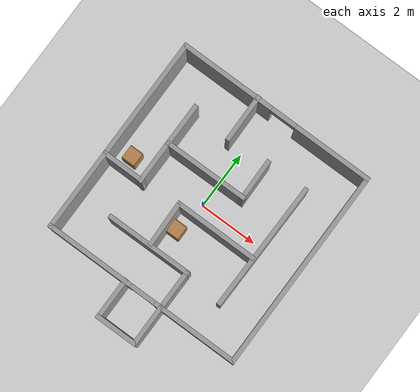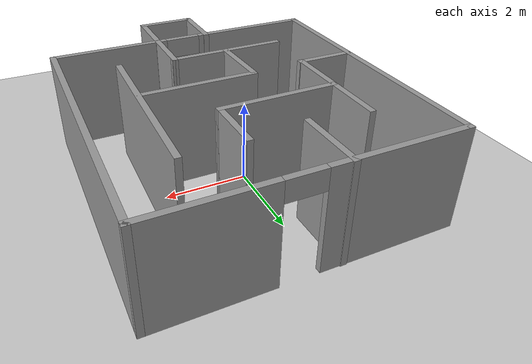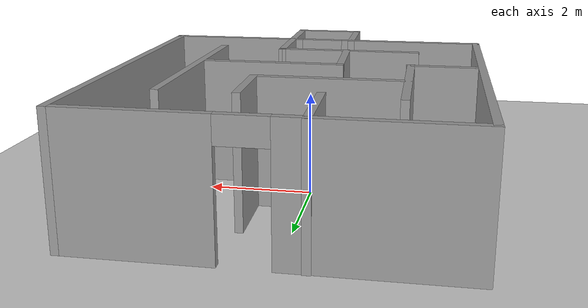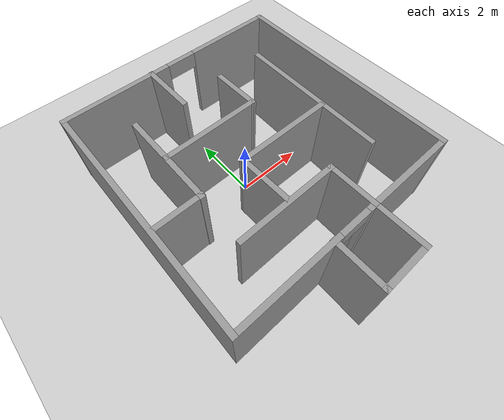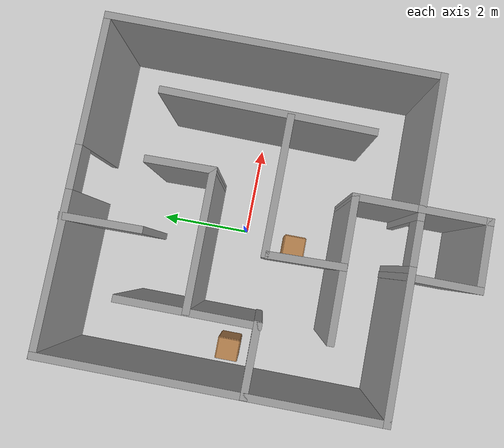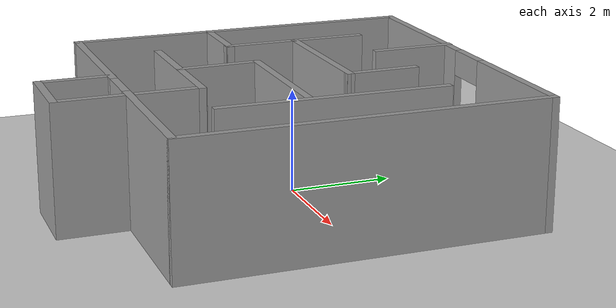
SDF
<sdf version="1.7">
 <world name="default">
  <light name="sun" type="directional">
   <pose>0 0 10 0 -0 0</pose>
   <diffuse>0.8 0.8 0.8 1</diffuse>
   <specular>0.2 0.2 0.2 1</specular>
   <attenuation>
    <range>1000</range>
    <constant>0.9</constant>
    <linear>0.01</linear>
    <quadratic>0.001</quadratic>
   </attenuation>
   <direction>-0.5 0.1 -0.9</direction>
   <spot><inner_angle>0</inner_angle><outer_angle>0</outer_angle><falloff>0</falloff></spot>
  </light>
  <model name="ground_plane">
   <static>1</static>
   <link name="link">
    <collision name="collision">
     <geometry><plane><normal>0 0 1</normal><size>100 100</size></plane></geometry>
     <surface><friction><ode><mu>100</mu><mu2>50</mu2></ode></friction></surface>
    </collision>
    <visual name="visual">
     <cast_shadows>0</cast_shadows>
     <geometry><plane><normal>0 0 1</normal><size>100 100</size></plane></geometry>
     <material>
      <script><uri>file://media/materials/scripts/gazebo.material</uri><name>Gazebo/Grey</name></script>
     </material>
    </visual>
   </link>
  </model>
  <gravity>0 0 -9.8</gravity>
  <magnetic_field>6e-06 2.3e-05 -4.2e-05</magnetic_field>
  <atmosphere type="adiabatic"/>
  <physics type="ode">
   <max_step_size>0.001</max_step_size>
   <real_time_factor>1</real_time_factor>
   <real_time_update_rate>1000</real_time_update_rate>
  </physics>
  <scene><ambient>0.4 0.4 0.4 1</ambient><background>0.7 0.7 0.7 1</background><shadows>1</shadows></scene>
  <audio><device>default</device></audio>
  <spherical_coordinates>
   <surface_model>EARTH_WGS84</surface_model>
   <latitude_deg>0</latitude_deg>
   <longitude_deg>0</longitude_deg>
   <elevation>0</elevation>
   <heading_deg>0</heading_deg>
  </spherical_coordinates>
  <model name="maze_world">
   <pose>0.216154 -0.616105 0 0 -0 0</pose>
   <link name="Wall_0">
    <collision name="Wall_0_Collision">
     <geometry><box><size>7 0.15 2.5</size></box></geometry>
     <pose>0 0 1.25 0 -0 0</pose>
    </collision>
    <visual name="Wall_0_Visual">
     <pose>0 0 1.25 0 -0 0</pose>
     <geometry><box><size>7 0.15 2.5</size></box></geometry>
     <material>
      <script><uri>file://media/materials/scripts/gazebo.material</uri><name>Gazebo/Grey</name></script>
      <ambient>1 1 1 1</ambient>
     </material>
     <meta><layer>0</layer></meta>
    </visual>
    <pose>-3.425 0.65876 0 0 -0 -1.5708</pose>
   </link>
   <link name="Wall_1">
    <pose>0 -2.76624 0 0 -0 0</pose>
    <visual name="Wall_1_Visual_0">
     <pose>-1.95629 0 1.25 0 -0 0</pose>
     <geometry><box><size>3.08743 0.15 2.5</size></box></geometry>
     <material>
      <script><uri>file://media/materials/scripts/gazebo.material</uri><name>Gazebo/Grey</name></script>
      <ambient>1 1 1 1</ambient>
     </material>
     <meta><layer>0</layer></meta>
    </visual>
    <collision name="Wall_1_Collision_0">
     <geometry><box><size>3.08743 0.15 2.5</size></box></geometry>
     <pose>-1.95629 0 1.25 0 -0 0</pose>
    </collision>
    <visual name="Wall_1_Visual_1">
     <pose>1.99371 0 1.25 0 -0 0</pose>
     <geometry><box><size>3.01257 0.15 2.5</size></box></geometry>
     <material>
      <script><uri>file://media/materials/scripts/gazebo.material</uri><name>Gazebo/Grey</name></script>
      <ambient>1 1 1 1</ambient>
     </material>
     <meta><layer>0</layer></meta>
    </visual>
    <collision name="Wall_1_Collision_1">
     <geometry><box><size>3.01257 0.15 2.5</size></box></geometry>
     <pose>1.99371 0 1.25 0 -0 0</pose>
    </collision>
    <visual name="Wall_1_Visual_2">
     <pose>0.037428 0 2.25 0 -0 0</pose>
     <geometry><box><size>0.9 0.15 0.5</size></box></geometry>
     <material>
      <script><uri>file://media/materials/scripts/gazebo.material</uri><name>Gazebo/Grey</name></script>
      <ambient>1 1 1 1</ambient>
     </material>
     <meta><layer>0</layer></meta>
    </visual>
    <collision name="Wall_1_Collision_2">
     <geometry><box><size>0.9 0.15 0.5</size></box></geometry>
     <pose>0.037428 0 2.25 0 -0 0</pose>
    </collision>
   </link>
   <link name="Wall_15">
    <collision name="Wall_15_Collision">
     <geometry><box><size>2.92567 0.15 2.5</size></box></geometry>
     <pose>0 0 1.25 0 -0 0</pose>
    </collision>
    <visual name="Wall_15_Visual">
     <pose>0 0 1.25 0 -0 0</pose>
     <geometry><box><size>2.92567 0.15 2.5</size></box></geometry>
     <material>
      <script><uri>file://media/materials/scripts/gazebo.material</uri><name>Gazebo/Grey</name></script>
      <ambient>1 1 1 1</ambient>
     </material>
     <meta><layer>0</layer></meta>
    </visual>
    <pose>-2.07739 1.34831 0 0 -0 -1.5708</pose>
   </link>
   <link name="Wall_17">
    <collision name="Wall_17_Collision">
     <geometry><box><size>2.92575 0.15 2.5</size></box></geometry>
     <pose>0 0 1.25 0 -0 0</pose>
    </collision>
    <visual name="Wall_17_Visual">
     <pose>0 0 1.25 0 -0 0</pose>
     <geometry><box><size>2.92575 0.15 2.5</size></box></geometry>
     <material>
      <script><uri>file://media/materials/scripts/gazebo.material</uri><name>Gazebo/Grey</name></script>
      <ambient>1 1 1 1</ambient>
     </material>
     <meta><layer>0</layer></meta>
    </visual>
    <pose>-0.669441 1.37848 0 0 -0 0.007246</pose>
   </link>
   <link name="Wall_18">
    <collision name="Wall_18_Collision">
     <geometry><box><size>1.45754 0.15 2.5</size></box></geometry>
     <pose>0 0 1.25 0 -0 0</pose>
    </collision>
    <visual name="Wall_18_Visual">
     <pose>0 0 1.25 0 -0 0</pose>
     <geometry><box><size>1.45754 0.15 2.5</size></box></geometry>
     <material>
      <script><uri>file://media/materials/scripts/gazebo.material</uri><name>Gazebo/Grey</name></script>
      <ambient>1 1 1 1</ambient>
     </material>
     <meta><layer>0</layer></meta>
    </visual>
    <pose>0.708339 2.04223 0 0 -0 1.58618</pose>
   </link>
   <link name="Wall_2">
    <collision name="Wall_2_Collision">
     <geometry><box><size>7 0.15 2.5</size></box></geometry>
     <pose>0 0 1.25 0 -0 0</pose>
    </collision>
    <visual name="Wall_2_Visual">
     <pose>0 0 1.25 0 -0 0</pose>
     <geometry><box><size>7 0.15 2.5</size></box></geometry>
     <material>
      <script><uri>file://media/materials/scripts/gazebo.material</uri><name>Gazebo/Grey</name></script>
      <ambient>1 1 1 1</ambient>
     </material>
     <meta><layer>0</layer></meta>
    </visual>
    <pose>3.425 0.65876 0 0 -0 1.5708</pose>
   </link>
   <link name="Wall_20">
    <collision name="Wall_20_Collision">
     <geometry><box><size>1.67876 0.15 2.5</size></box></geometry>
     <pose>0 0 1.25 0 -0 0</pose>
    </collision>
    <visual name="Wall_20_Visual">
     <pose>0 0 1.25 0 -0 0</pose>
     <geometry><box><size>1.67876 0.15 2.5</size></box></geometry>
     <material>
      <script><uri>file://media/materials/scripts/gazebo.material</uri><name>Gazebo/Grey</name></script>
      <ambient>1 1 1 1</ambient>
     </material>
     <meta><layer>0</layer></meta>
    </visual>
    <pose>-0.699611 3.33956 0 0 -0 -1.55764</pose>
   </link>
   <link name="Wall_22">
    <collision name="Wall_22_Collision">
     <geometry><box><size>2.99192 0.15 2.5</size></box></geometry>
     <pose>0 0 1.25 0 -0 0</pose>
    </collision>
    <visual name="Wall_22_Visual">
     <pose>0 0 1.25 0 -0 0</pose>
     <geometry><box><size>2.99192 0.15 2.5</size></box></geometry>
     <material>
      <script><uri>file://media/materials/scripts/gazebo.material</uri><name>Gazebo/Grey</name></script>
      <ambient>1 1 1 1</ambient>
     </material>
     <meta><layer>0</layer></meta>
    </visual>
    <pose>-0.702407 -1.45329 0 0 -0 0.004093</pose>
   </link>
   <link name="Wall_23">
    <collision name="Wall_23_Collision">
     <geometry><box><size>1.45738 0.15 2.5</size></box></geometry>
     <pose>0 0 1.25 0 -0 0</pose>
    </collision>
    <visual name="Wall_23_Visual">
     <pose>0 0 1.25 0 -0 0</pose>
     <geometry><box><size>1.45738 0.15 2.5</size></box></geometry>
     <material>
      <script><uri>file://media/materials/scripts/gazebo.material</uri><name>Gazebo/Grey</name></script>
      <ambient>1 1 1 1</ambient>
     </material>
     <meta><layer>0</layer></meta>
    </visual>
    <pose>0.719591 -2.10116 0 0 -0 -1.56897</pose>
   </link>
   <link name="Wall_25">
    <collision name="Wall_25_Collision">
     <geometry><box><size>1.59943 0.15 2.5</size></box></geometry>
     <pose>0 0 1.25 0 -0 0</pose>
    </collision>
    <visual name="Wall_25_Visual">
     <pose>0 0 1.25 0 -0 0</pose>
     <geometry><box><size>1.59943 0.15 2.5</size></box></geometry>
     <material>
      <script><uri>file://media/materials/scripts/gazebo.material</uri><name>Gazebo/Grey</name></script>
      <ambient>1 1 1 1</ambient>
     </material>
     <meta><layer>0</layer></meta>
    </visual>
    <pose>-0.689554 -0.723383 0 0 -0 -1.54303</pose>
   </link>
   <link name="Wall_28">
    <collision name="Wall_28_Collision">
     <geometry><box><size>4.43337 0.15 2.5</size></box></geometry>
     <pose>0 0 1.25 0 -0 0</pose>
    </collision>
    <visual name="Wall_28_Visual">
     <pose>0 0 1.25 0 -0 0</pose>
     <geometry><box><size>4.43337 0.15 2.5</size></box></geometry>
     <material>
      <script><uri>file://media/materials/scripts/gazebo.material</uri><name>Gazebo/Grey</name></script>
      <ambient>1 1 1 1</ambient>
     </material>
     <meta><layer>0</layer></meta>
    </visual>
    <pose>2.08924 0.551145 0 0 -0 -1.58322</pose>
   </link>
   <link name="Wall_3">
    <pose>0 4.08376 0 0 -0 3.14159</pose>
    <visual name="Wall_3_Visual_0">
     <pose>-2.11508 0 1.25 0 -0 0</pose>
     <geometry><box><size>2.76984 0.15 2.5</size></box></geometry>
     <material>
      <script><uri>file://media/materials/scripts/gazebo.material</uri><name>Gazebo/Grey</name></script>
      <ambient>1 1 1 1</ambient>
     </material>
     <meta><layer>0</layer></meta>
    </visual>
    <collision name="Wall_3_Collision_0">
     <geometry><box><size>2.76984 0.15 2.5</size></box></geometry>
     <pose>-2.11508 0 1.25 0 -0 0</pose>
    </collision>
    <visual name="Wall_3_Visual_1">
     <pose>1.83492 0 1.25 0 -0 0</pose>
     <geometry><box><size>3.33016 0.15 2.5</size></box></geometry>
     <material>
      <script><uri>file://media/materials/scripts/gazebo.material</uri><name>Gazebo/Grey</name></script>
      <ambient>1 1 1 1</ambient>
     </material>
     <meta><layer>0</layer></meta>
    </visual>
    <collision name="Wall_3_Collision_1">
     <geometry><box><size>3.33016 0.15 2.5</size></box></geometry>
     <pose>1.83492 0 1.25 0 -0 0</pose>
    </collision>
    <visual name="Wall_3_Visual_2">
     <pose>-0.280161 0 2.25 0 -0 0</pose>
     <geometry><box><size>0.9 0.15 0.5</size></box></geometry>
     <material>
      <script><uri>file://media/materials/scripts/gazebo.material</uri><name>Gazebo/Grey</name></script>
      <ambient>1 1 1 1</ambient>
     </material>
     <meta><layer>0</layer></meta>
    </visual>
    <collision name="Wall_3_Collision_2">
     <geometry><box><size>0.9 0.15 0.5</size></box></geometry>
     <pose>-0.280161 0 2.25 0 -0 0</pose>
    </collision>
   </link>
   <link name="Wall_30">
    <collision name="Wall_30_Collision">
     <geometry><box><size>1.50661 0.15 2.5</size></box></geometry>
     <pose>0 0 1.25 0 -0 0</pose>
    </collision>
    <visual name="Wall_30_Visual">
     <pose>0 0 1.25 0 -0 0</pose>
     <geometry><box><size>1.50661 0.15 2.5</size></box></geometry>
     <material>
      <script><uri>file://media/materials/scripts/gazebo.material</uri><name>Gazebo/Grey</name></script>
      <ambient>1 1 1 1</ambient>
     </material>
     <meta><layer>0</layer></meta>
    </visual>
    <pose>-2.7387 -0.02076 0 0 -0 0</pose>
   </link>
   <link name="Wall_32">
    <collision name="Wall_32_Collision">
     <geometry><box><size>2.89034 0.15 2.5</size></box></geometry>
     <pose>0 0 1.25 0 -0 0</pose>
    </collision>
    <visual name="Wall_32_Visual">
     <pose>0 0 1.25 0 -0 0</pose>
     <geometry><box><size>2.89034 0.15 2.5</size></box></geometry>
     <material>
      <script><uri>file://media/materials/scripts/gazebo.material</uri><name>Gazebo/Grey</name></script>
      <ambient>1 1 1 1</ambient>
     </material>
     <meta><layer>0</layer></meta>
    </visual>
    <pose>0.666128 0.085641 0 0 -0 0</pose>
   </link>
   <link name="Wall_5">
    <collision name="Wall_5_Collision">
     <geometry><box><size>1.5 0.15 2.5</size></box></geometry>
     <pose>0 0 1.25 0 -0 0</pose>
    </collision>
    <visual name="Wall_5_Visual">
     <pose>0 0 1.25 0 -0 0</pose>
     <geometry><box><size>1.5 0.15 2.5</size></box></geometry>
     <material>
      <script><uri>file://media/materials/scripts/gazebo.material</uri><name>Gazebo/Grey</name></script>
      <ambient>1 1 1 1</ambient>
     </material>
     <meta><layer>0</layer></meta>
    </visual>
    <pose>-0.629213 -3.42985 0 0 -0 -1.5708</pose>
   </link>
   <link name="Wall_6">
    <collision name="Wall_6_Collision">
     <geometry><box><size>1.5 0.15 2.5</size></box></geometry>
     <pose>0 0 1.25 0 -0 0</pose>
    </collision>
    <visual name="Wall_6_Visual">
     <pose>0 0 1.25 0 -0 0</pose>
     <geometry><box><size>1.5 0.15 2.5</size></box></geometry>
     <material>
      <script><uri>file://media/materials/scripts/gazebo.material</uri><name>Gazebo/Grey</name></script>
      <ambient>1 1 1 1</ambient>
     </material>
     <meta><layer>0</layer></meta>
    </visual>
    <pose>0.045787 -4.10485 0 0 -0 0</pose>
   </link>
   <link name="Wall_8">
    <collision name="Wall_8_Collision">
     <geometry><box><size>1.5 0.15 2.5</size></box></geometry>
     <pose>0 0 1.25 0 -0 0</pose>
    </collision>
    <visual name="Wall_8_Visual">
     <pose>0 0 1.25 0 -0 0</pose>
     <geometry><box><size>1.5 0.15 2.5</size></box></geometry>
     <material>
      <script><uri>file://media/materials/scripts/gazebo.material</uri><name>Gazebo/Grey</name></script>
      <ambient>1 1 1 1</ambient>
     </material>
     <meta><layer>0</layer></meta>
    </visual>
    <pose>0.720787 -3.42985 0 0 -0 1.5708</pose>
   </link>
   <static>1</static>
  </model>
  <model name="cabinet">
   <static>1</static>
   <link name="cabinet_bottom_plate">
    <inertial>
     <pose>0 0 -1 0 -0 0</pose>
     <inertia><ixx>2.05</ixx><ixy>0</ixy><ixz>0</ixz><iyy>2.05</iyy><iyz>0</iyz><izz>2.05</izz></inertia>
     <mass>25</mass>
    </inertial>
    <collision name="cabinet_bottom_plate_geom">
     <pose>0 0 0.01 0 -0 0</pose>
     <geometry><box><size>0.45 0.45 0.02</size></box></geometry>
    </collision>
    <visual name="cabinet_bottom_plate_geom_visual">
     <pose>0 0 0.01 0 -0 0</pose>
     <geometry><box><size>0.45 0.45 0.02</size></box></geometry>
     <material>
      <script><uri>file://media/materials/scripts/gazebo.material</uri><name>Gazebo/Wood</name></script>
     </material>
    </visual>
    <collision name="cabinet_bottom_plate_geom_cabinet_back_plate">
     <pose>0.235 0 0.51 0 -0 0</pose>
     <geometry><box><size>0.02 0.45 1.02</size></box></geometry>
    </collision>
    <visual name="cabinet_bottom_plate_geom_cabinet_back_plate_visual">
     <pose>0.235 0 0.51 0 -0 0</pose>
     <geometry><box><size>0.02 0.45 1.02</size></box></geometry>
     <material>
      <script><uri>file://media/materials/scripts/gazebo.material</uri><name>Gazebo/Wood</name></script>
     </material>
    </visual>
    <collision name="cabinet_bottom_plate_geom_cabinet_left_plate">
     <pose>0 0.235 0.51 0 -0 0</pose>
     <geometry><box><size>0.45 0.02 1.02</size></box></geometry>
    </collision>
    <visual name="cabinet_bottom_plate_geom_cabinet_left_plate_visual">
     <pose>0 0.235 0.51 0 -0 0</pose>
     <geometry><box><size>0.45 0.02 1.02</size></box></geometry>
     <material>
      <script><uri>file://media/materials/scripts/gazebo.material</uri><name>Gazebo/Wood</name></script>
     </material>
    </visual>
    <collision name="cabinet_bottom_plate_geom_cabinet_middle_plate">
     <pose>0 0 0.51 0 -0 0</pose>
     <geometry><box><size>0.45 0.45 0.02</size></box></geometry>
    </collision>
    <visual name="cabinet_bottom_plate_geom_cabinet_middle_plate_visual">
     <pose>0 0 0.51 0 -0 0</pose>
     <geometry><box><size>0.45 0.45 0.02</size></box></geometry>
     <material>
      <script><uri>file://media/materials/scripts/gazebo.material</uri><name>Gazebo/Wood</name></script>
     </material>
    </visual>
    <collision name="cabinet_bottom_plate_geom_cabinet_right_plate">
     <pose>0 -0.235 0.51 0 -0 0</pose>
     <geometry><box><size>0.45 0.02 1.02</size></box></geometry>
    </collision>
    <visual name="cabinet_bottom_plate_geom_cabinet_right_plate_visual">
     <pose>0 -0.235 0.51 0 -0 0</pose>
     <geometry><box><size>0.45 0.02 1.02</size></box></geometry>
     <material>
      <script><uri>file://media/materials/scripts/gazebo.material</uri><name>Gazebo/Wood</name></script>
     </material>
    </visual>
    <collision name="cabinet_bottom_plate_geom_cabinet_top_plate">
     <pose>0 0 1.01 0 -0 0</pose>
     <geometry><box><size>0.45 0.45 0.02</size></box></geometry>
    </collision>
    <visual name="cabinet_bottom_plate_geom_cabinet_top_plate_visual">
     <pose>0 0 1.01 0 -0 0</pose>
     <geometry><box><size>0.45 0.45 0.02</size></box></geometry>
     <material>
      <script><uri>file://media/materials/scripts/gazebo.material</uri><name>Gazebo/Wood</name></script>
     </material>
    </visual>
   </link>
   <pose>-0.188745 -1.12826 0 0 -0 0</pose>
  </model>
  <model name="cabinet_0">
   <static>1</static>
   <link name="cabinet_bottom_plate">
    <inertial>
     <pose>0 0 -1 0 -0 0</pose>
     <inertia><ixx>2.05</ixx><ixy>0</ixy><ixz>0</ixz><iyy>2.05</iyy><iyz>0</iyz><izz>2.05</izz></inertia>
     <mass>25</mass>
    </inertial>
    <collision name="cabinet_bottom_plate_geom">
     <pose>0 0 0.01 0 -0 0</pose>
     <geometry><box><size>0.45 0.45 0.02</size></box></geometry>
    </collision>
    <visual name="cabinet_bottom_plate_geom_visual">
     <pose>0 0 0.01 0 -0 0</pose>
     <geometry><box><size>0.45 0.45 0.02</size></box></geometry>
     <material>
      <script><uri>file://media/materials/scripts/gazebo.material</uri><name>Gazebo/Wood</name></script>
     </material>
    </visual>
    <collision name="cabinet_bottom_plate_geom_cabinet_back_plate">
     <pose>0.235 0 0.51 0 -0 0</pose>
     <geometry><box><size>0.02 0.45 1.02</size></box></geometry>
    </collision>
    <visual name="cabinet_bottom_plate_geom_cabinet_back_plate_visual">
     <pose>0.235 0 0.51 0 -0 0</pose>
     <geometry><box><size>0.02 0.45 1.02</size></box></geometry>
     <material>
      <script><uri>file://media/materials/scripts/gazebo.material</uri><name>Gazebo/Wood</name></script>
     </material>
    </visual>
    <collision name="cabinet_bottom_plate_geom_cabinet_left_plate">
     <pose>0 0.235 0.51 0 -0 0</pose>
     <geometry><box><size>0.45 0.02 1.02</size></box></geometry>
    </collision>
    <visual name="cabinet_bottom_plate_geom_cabinet_left_plate_visual">
     <pose>0 0.235 0.51 0 -0 0</pose>
     <geometry><box><size>0.45 0.02 1.02</size></box></geometry>
     <material>
      <script><uri>file://media/materials/scripts/gazebo.material</uri><name>Gazebo/Wood</name></script>
     </material>
    </visual>
    <collision name="cabinet_bottom_plate_geom_cabinet_middle_plate">
     <pose>0 0 0.51 0 -0 0</pose>
     <geometry><box><size>0.45 0.45 0.02</size></box></geometry>
    </collision>
    <visual name="cabinet_bottom_plate_geom_cabinet_middle_plate_visual">
     <pose>0 0 0.51 0 -0 0</pose>
     <geometry><box><size>0.45 0.45 0.02</size></box></geometry>
     <material>
      <script><uri>file://media/materials/scripts/gazebo.material</uri><name>Gazebo/Wood</name></script>
     </material>
    </visual>
    <collision name="cabinet_bottom_plate_geom_cabinet_right_plate">
     <pose>0 -0.235 0.51 0 -0 0</pose>
     <geometry><box><size>0.45 0.02 1.02</size></box></geometry>
    </collision>
    <visual name="cabinet_bottom_plate_geom_cabinet_right_plate_visual">
     <pose>0 -0.235 0.51 0 -0 0</pose>
     <geometry><box><size>0.45 0.02 1.02</size></box></geometry>
     <material>
      <script><uri>file://media/materials/scripts/gazebo.material</uri><name>Gazebo/Wood</name></script>
     </material>
    </visual>
    <collision name="cabinet_bottom_plate_geom_cabinet_top_plate">
     <pose>0 0 1.01 0 -0 0</pose>
     <geometry><box><size>0.45 0.45 0.02</size></box></geometry>
    </collision>
    <visual name="cabinet_bottom_plate_geom_cabinet_top_plate_visual">
     <pose>0 0 1.01 0 -0 0</pose>
     <geometry><box><size>0.45 0.45 0.02</size></box></geometry>
     <material>
      <script><uri>file://media/materials/scripts/gazebo.material</uri><name>Gazebo/Wood</name></script>
     </material>
    </visual>
   </link>
   <pose>-2.65098 -0.10983 0 0 -0 0</pose>
  </model>
 </world>
</sdf>
